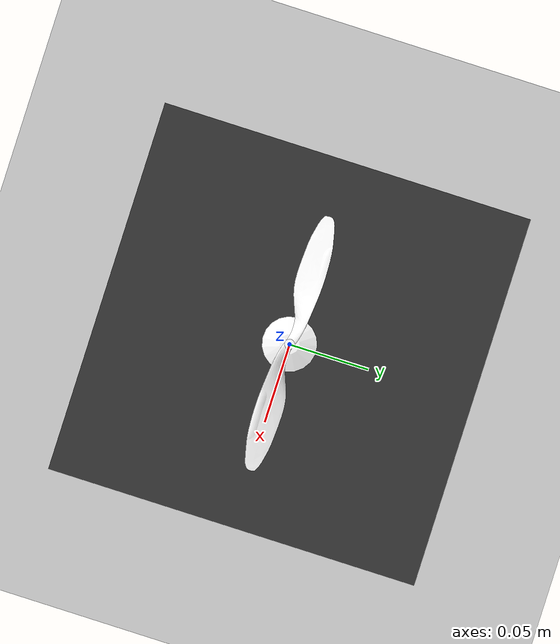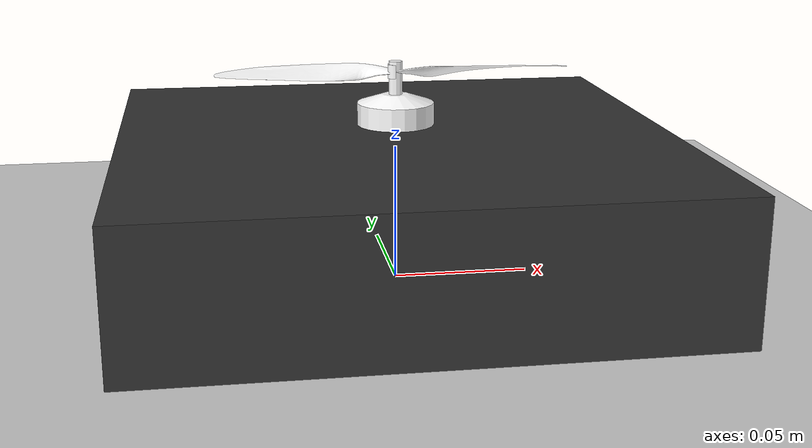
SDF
<?xml version="1.0" ?>
<sdf version="1.7">
  <world name="propeller_test_stand">
    <plugin filename="libignition-gazebo-physics-system.so"
      name="ignition::gazebo::systems::Physics">
    </plugin>
    <plugin
      filename="ignition-gazebo-sensors-system"
      name="ignition::gazebo::systems::Sensors">
      <render_engine>ogre2</render_engine>
    </plugin>
    <plugin filename="libignition-gazebo-user-commands-system.so"
      name="ignition::gazebo::systems::UserCommands">
    </plugin>
    <plugin filename="libignition-gazebo-scene-broadcaster-system.so"
      name="ignition::gazebo::systems::SceneBroadcaster">
    </plugin>
    <plugin
      filename="ignition-gazebo-air-pressure-system"
      name="ignition::gazebo::systems::AirPressure">
    </plugin>
    <plugin
      filename="ignition-gazebo-altimeter-system"
      name="ignition::gazebo::systems::Altimeter">
    </plugin>
    <plugin
      filename="ignition-gazebo-imu-system"
      name="ignition::gazebo::systems::Imu">
    </plugin>
    <plugin
      filename="ignition-gazebo-magnetometer-system"
      name="ignition::gazebo::systems::Magnetometer">
    </plugin>
    <plugin filename="ignition-gazebo-forcetorque-system"
      name="ignition::gazebo::systems::ForceTorque" />

    <scene>
      <ambient>1.0 1.0 1.0</ambient>
      <background>0.8 0.8 0.8</background>
      <sky></sky>
    </scene>

    <light type="directional" name="sun">
      <cast_shadows>true</cast_shadows>
      <pose>0 0 10 0 0 0</pose>
      <diffuse>0.8 0.8 0.8 1</diffuse>
      <specular>0.8 0.8 0.8 1</specular>
      <attenuation>
        <range>1000</range>
        <constant>0.9</constant>
        <linear>0.01</linear>
        <quadratic>0.001</quadratic>
      </attenuation>
      <direction>-0.5 0.1 -0.9</direction>
    </light>

    <include>
      <uri>https://fuel.ignitionrobotics.org/1.0/OpenRobotics/models/Ground Plane</uri>
    </include>

    <!-- Propeller Test Stand -->
    <model name="test_stand">
      <pose>0 0 0.03 0 0 0</pose>
      <link name="base_link">
        <inertial>
          <pose>0 0 0 0 0 0</pose>
          <mass>1000</mass>
          <inertia>
            <ixx>10</ixx>
            <ixy>0</ixy>
            <ixz>0</ixz>
            <iyy>10</iyy>
            <iyz>0</iyz>
            <izz>10</izz>
          </inertia>
        </inertial>
        <collision name="collision">
          <geometry>
            <box>
              <size>0.2 0.2 0.05</size>
            </box>
          </geometry>
        </collision>
        <visual name="visual">
          <geometry>
            <box>
              <size>0.2 0.2 0.05</size>
            </box>
          </geometry>
          <material>
            <ambient>0.2 0.2 0.2</ambient>
            <diffuse>0.2 0.2 0.2</diffuse>
            <specular>0.1 0.1 0.1</specular>
          </material>
        </visual>
      </link>

      <link name='motor_link'>
        <pose relative_to='motor_joint'>0 0 0.018 0 0 0</pose>
        <inertial>
          <pose>0 0 -0.018 0 0 0</pose>
          <mass>0.025</mass>
          <inertia>
            <ixx>9.75e-06</ixx>
            <ixy>0</ixy>
            <ixz>0</ixz>
            <iyy>0.000166704</iyy>
            <iyz>0</iyz>
            <izz>0.000167604</izz>
          </inertia>
        </inertial>
        <collision name='collision'>
          <pose>0 0 0 0 0 0</pose>
          <geometry>
            <cylinder>
              <length>0.002</length>
              <radius>0.05</radius>
            </cylinder>
          </geometry>
        </collision>
        <visual name='spinner_visual'>
          <pose>0 0 -0.01 0 0 0</pose>
          <geometry>
            <mesh>
              <scale>1 1 1</scale>
              <uri>model://omnicopter/meshes/spinner.dae</uri>
            </mesh>
          </geometry>
          <material>
            <ambient>1 1 1</ambient>
            <diffuse>1 1 1</diffuse>
            <specular>1 1 1</specular>
            <pbr>
              <metal>
                <albedo_map>model://omnicopter/materials/textures/red_metal/red_metal_diffuse.jpg</albedo_map>
                <metalness_map>model://omnicopter/materials/textures/red_metal/red_metal_metallic.jpg</metalness_map>
                <normal_map>model://omnicopter/materials/textures/red_metal/red_metal_normal.jpg</normal_map>
                <roughness_map>model://omnicopter/materials/textures/red_metal/red_metal_roughness.jpg</roughness_map>
                <roughness>1.0</roughness>
                <metalness>1.0</metalness>
              </metal>
            </pbr>
          </material>
        </visual>
        <visual name='prop_visual'>
          <pose>0 0 0 0 0 0</pose>
          <geometry>
            <mesh>
              <scale>0.5 0.5 0.5</scale>
              <uri>model://omnicopter/meshes/iris_prop_cw.dae</uri>
            </mesh>
          </geometry>
          <material>
            <ambient>1 1 1</ambient>
            <diffuse>1 1 1</diffuse>
            <specular>0.3 0.3 0.3</specular>
            <pbr>
              <metal>
                <albedo_map>model://omnicopter/materials/textures/plastic008/plastic008_1k_diffuse.jpg</albedo_map>
                <normal_map>model://omnicopter/materials/textures/plastic008/plastic008_1k_normal.jpg</normal_map>
                <roughness_map>model://omnicopter/materials/textures/plastic008/plastic008_1k_roughness.jpg</roughness_map>
                <roughness>0.5</roughness>
                <metalness>0.5</metalness>
              </metal>
            </pbr>
          </material>
        </visual>
      </link>
      <joint name='motor_joint' type='revolute'>
        <pose relative_to='base_link'>0 0 0.03 0 0 0</pose>
        <parent>base_link</parent>
        <child>motor_link</child>
        <axis>
          <xyz>0 0 1</xyz>
          <limit>
            <lower>-1e16</lower>
            <upper>1e16</upper>
          </limit>
          <dynamics>
            <damping>0.003</damping>
          </dynamics>
        </axis>
        <sensor name="force_torque_sensor" type="force_torque">
          <update_rate>30</update_rate>
          <always_on>true</always_on>
          <visualize>true</visualize>
          <force_torque>
            <frame>sensor</frame>
            <measure_direction>child_to_parent</measure_direction>
          </force_torque>
        </sensor>
      </joint>

      <!-- sensors -->
      <link name='imu_link'>
        <inertial>
          <pose>0 0 0 0 0 0</pose>
          <mass>0.15</mass>
          <inertia>
            <ixx>0.00002</ixx>
            <ixy>0</ixy>
            <ixz>0</ixz>
            <iyy>0.00002</iyy>
            <iyz>0</iyz>
            <izz>0.00002</izz>
          </inertia>
        </inertial>
        <sensor name="imu_sensor" type="imu">
          <pose>0 0 0 3.141593 0 0</pose>
          <always_on>1</always_on>
          <update_rate>1000.0</update_rate>
        </sensor>
      </link>
      <joint name='imu_joint' type='revolute'>
        <child>imu_link</child>
        <parent>base_link</parent>
        <axis>
          <xyz>0 0 1</xyz>
          <limit>
            <lower>0</lower>
            <upper>0</upper>
            <effort>0</effort>
            <velocity>0</velocity>
          </limit>
          <dynamics>
            <damping>1.0</damping>
          </dynamics>
          <use_parent_model_frame>1</use_parent_model_frame>
        </axis>
      </joint>

      <!-- plugins -->
      <plugin filename="libignition-gazebo-joint-state-publisher-system.so"
        name="ignition::gazebo::systems::JointStatePublisher">
      </plugin>
      <plugin filename="libignition-gazebo-apply-joint-force-system.so"
        name="ignition::gazebo::systems::ApplyJointForce">
        <joint_name>motor_joint</joint_name>
      </plugin>

      <!-- prop motor_1 (cw) lift-drag -->
      <plugin filename="libignition-gazebo-lift-drag-system.so"
          name="ignition::gazebo::systems::LiftDrag">
        <a0>0.3</a0>
        <alpha_stall>1</alpha_stall>
        <cla>4.25</cla>
        <cda>0.10</cda>
        <cma>0.00</cma>
        <cla_stall>-4.25</cla_stall>
        <cda_stall>0.0</cda_stall>
        <cma_stall>0.0</cma_stall>
        <area>0.003</area>
        <air_density>1.2041</air_density>
        <cp>0.05 0 0</cp>
        <forward>0 -1 0</forward>
        <upward>0 0 1</upward>
        <link_name>motor_link</link_name>
        <element_name>blade_1</element_name>
      </plugin>
      <plugin filename="libignition-gazebo-lift-drag-system.so"
          name="ignition::gazebo::systems::LiftDrag">
        <a0>0.3</a0>
        <alpha_stall>1</alpha_stall>
        <cla>4.25</cla>
        <cda>0.10</cda>
        <cma>0.00</cma>
        <cla_stall>-4.25</cla_stall>
        <cda_stall>0.0</cda_stall>
        <cma_stall>0.0</cma_stall>
        <area>0.003</area>
        <air_density>1.2041</air_density>
        <cp>-0.05 0 0</cp>
        <forward>0 1 0</forward>
        <upward>0 0 1</upward>
        <link_name>motor_link</link_name>
        <element_name>blade_2</element_name>
      </plugin>

      <plugin name="ArduPilotPlugin" filename="libArduPilotPlugin.so">
        <fdm_addr>127.0.0.1</fdm_addr>
        <fdm_port_in>9002</fdm_port_in>
        <connectionTimeoutMaxCount>5</connectionTimeoutMaxCount>
        <lock_step>1</lock_step>
        <modelXYZToAirplaneXForwardZDown>0 0 0 3.141593 0 0</modelXYZToAirplaneXForwardZDown>
        <gazeboXYZToNED>0 0 0 3.141593 0 0</gazeboXYZToNED>
        <imuName>imu_sensor</imuName>

        <!--
            SERVO1_FUNCTION   33 (Motor 1 CW)
            SERVO1_MAX        2000
            SERVO1_MIN        1000
            SERVO1_REVERSED   0
            SERVO1_TRIM       1500
        -->
        <control channel="0">
          <jointName>motor_joint</jointName>
          <useForce>1</useForce>
          <multiplier>-2762</multiplier>
          <offset>0</offset>
          <servo_min>1100</servo_min>
          <servo_max>1900</servo_max>
          <type>VELOCITY</type>
          <p_gain>0.1</p_gain>
          <i_gain>0.01</i_gain>
          <d_gain>0</d_gain>
          <i_max>0.1</i_max>
          <i_min>-0.1</i_min>
          <cmd_max>5.0</cmd_max>
          <cmd_min>-5.0</cmd_min>
        </control>
      </plugin>

    </model>

  </world>
</sdf>
